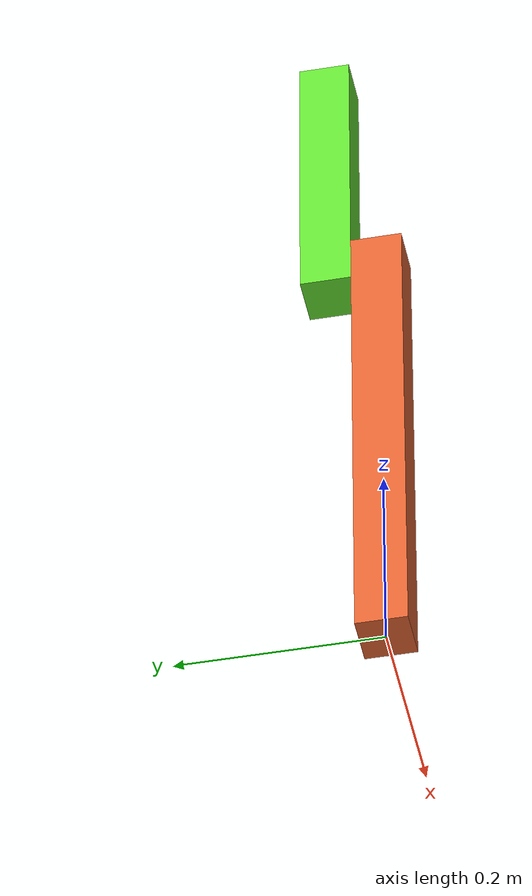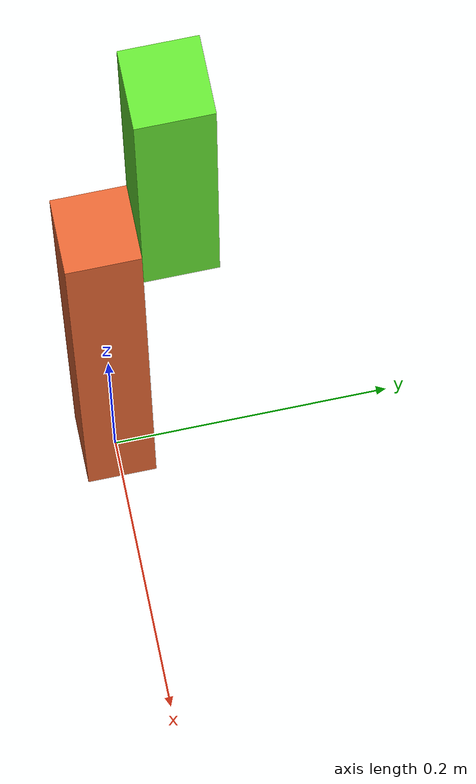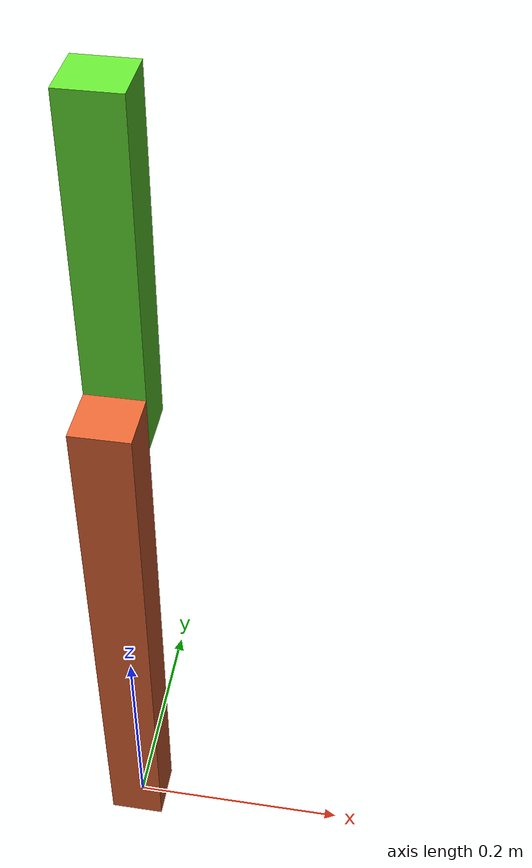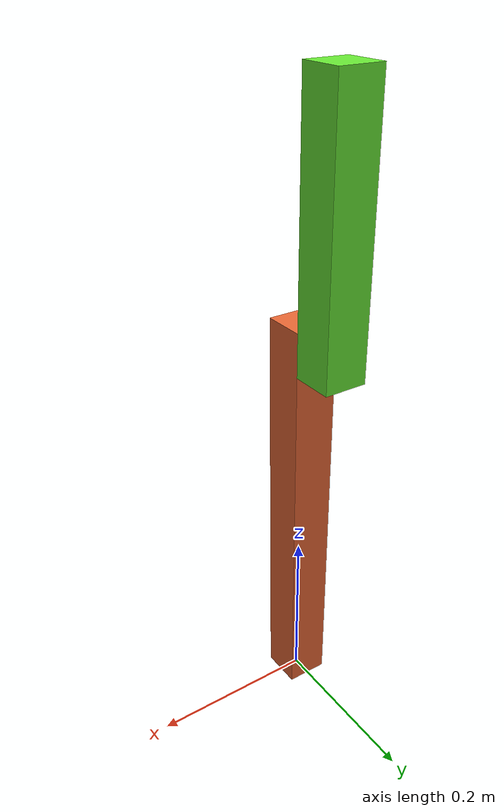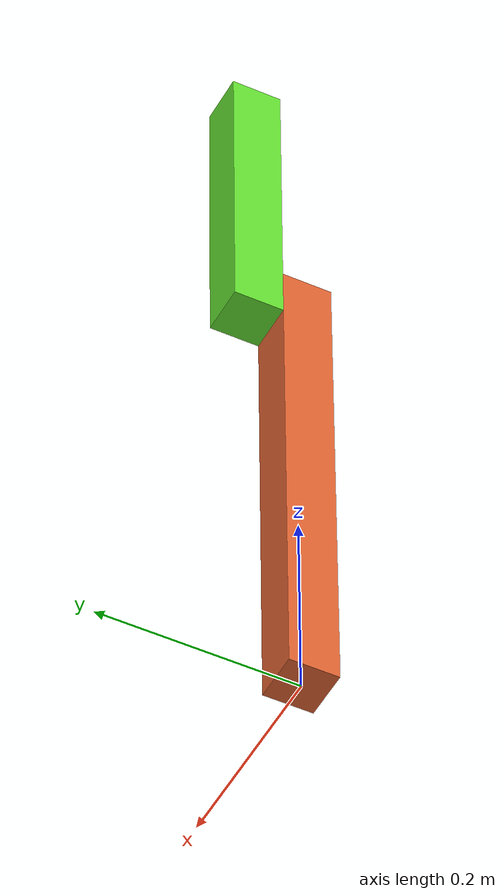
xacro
<?xml version="1.0"?>
<robot xmlns:xacro="http://www.ros.org/wiki/xacro" name="robot_model">

  <!-- include macros -->
  <xacro:include filename="$(find robot_description)/urdf/box_macro.xacro" />
  <xacro:include filename="$(find robot_description)/urdf/gz_properties.xacro" />
  <!-- Define xacro properties -->
  <xacro:property name="base_length" value="0.50"/>
  <xacro:property name="base_width" value="0.05"/>
  <xacro:property name="base_height" value="0.05"/>
  <xacro:property name="base_mass" value="1.0"/>
  <xacro:property name="base_color" value="0.9 0.4 0.2 1"/>

  <xacro:property name="base_visual_xyz" value="${(float(base_length)/2.0)} 0 0"/>
  <xacro:property name="base_visual_rpy" value="0 0 0"/>

  <xacro:property name="arm1_length" value="0.30"/>
  <xacro:property name="arm1_width" value="0.05"/>
  <xacro:property name="arm1_height" value="0.05"/>
  <xacro:property name="arm1_mass" value="0.6"/>
  <xacro:property name="arm1_color" value="0.4 0.9 0.2 1"/>

  <xacro:property name="arm1_visual_xyz" value="${(float(arm1_length)/2.0)} 0 0"/>
  <xacro:property name="arm1_visual_rpy" value="0 0 0"/>

  <link name="world"/>

  <xacro:box_link
    link_name="base_link"
    size_x="${base_length}"
    size_y="${base_width}"
    size_z="${base_height}"
    mass="${base_mass}"
    color_rgba="${base_color}"
    xyz="${base_visual_xyz}"
    rpy="${base_visual_rpy}" />

  <joint name="world_to_base" type="fixed">
    <origin xyz="0 0 0" rpy="0 -1.57 0"/>
    <parent link="world"/>
    <child  link="base_link"/>
  </joint>

  <xacro:box_link
    link_name="arm1_link"
    size_x="${arm1_length}"
    size_y="${arm1_width}"
    size_z="${arm1_height}"
    mass="${arm1_mass}"
    color_rgba="${arm1_color}"
    xyz="${arm1_visual_xyz}"
    rpy="${arm1_visual_rpy}" />

  <joint name="base_to_arm1" type="continuous">
    <origin xyz="${float(base_length) - float(arm1_height)} ${float(arm1_height)} 0" rpy="0 0 0"/>
    <parent link="base_link"/>
    <child  link="arm1_link"/>
    <axis  xyz="0 1 0"/>
  </joint>

</robot>

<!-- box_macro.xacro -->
<robot xmlns:xacro="http://www.ros.org/wiki/xacro">

  <xacro:macro name="box_link" params="link_name size_x size_y size_z mass color_rgba xyz rpy">
    <link name="${link_name}">
      <!--visual properties-->
      <visual>
        <origin xyz="${xyz}" rpy="${rpy}"/>
        <geometry>
          <box size="${size_x} ${size_y} ${size_z}"/>
        </geometry>
        <material name="${link_name}_mat">
          <color rgba="${color_rgba}"/>
        </material>
      </visual>
      <!--collision properties-->
      <collision>
        <origin xyz="${xyz}" rpy="${rpy}"/>
        <geometry>
          <box size="${size_x} ${size_y} ${size_z}"/>
        </geometry>
      </collision>
      <!--Inertia properties-->
      <inertial>
        <origin xyz="${xyz}" rpy="${rpy}"/>
        <mass value="${mass}" />
        <inertia
          ixx="${(1.0/12.0) * float(mass) * (float(size_y)**2 + float(size_z)**2)}"
          ixy="0.0"
          ixz="0.0"
          iyy="${(1.0/12.0) * float(mass) * (float(size_x)**2 + float(size_z)**2)}"
          iyz="0.0"
          izz="${(1.0/12.0) * float(mass) * (float(size_x)**2 + float(size_y)**2)}"/>
      </inertial>
    </link>
  </xacro:macro>

</robot>
